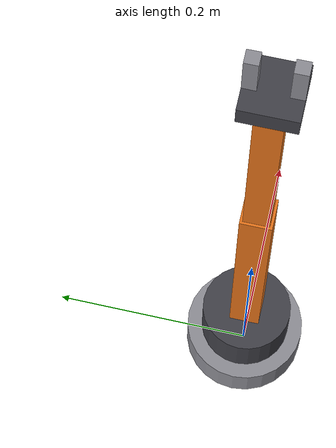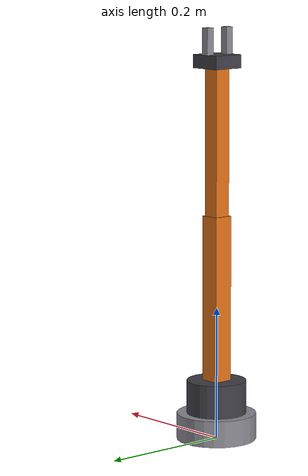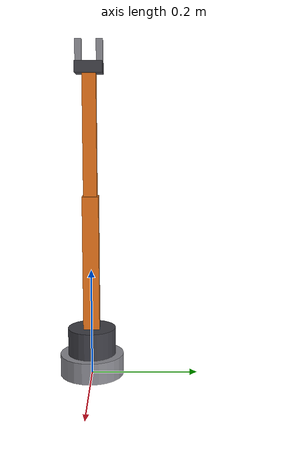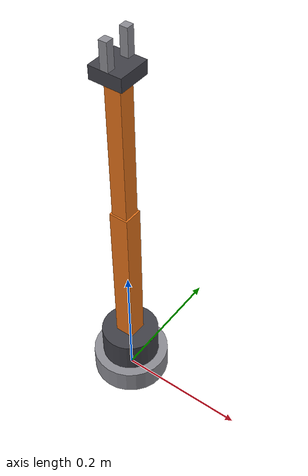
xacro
<?xml version="1.0"?>
<!-- 用途：Gazebo 仿真（含 ros2_control 硬件接口与插件） -->
<robot xmlns:xacro="http://www.ros.org/wiki/xacro" name="ros2_arm">

  <!-- 1. 引入零件库 -->
  <xacro:include filename="$(find ros2_arm_description)/urdf/ros2_arm_core.xacro"/>
  <!-- 2. 引入 ros2_control 接口声明（第 06 章写的文件） -->
  <xacro:include filename="$(find ros2_arm_description)/urdf/ros2_arm.ros2_control.xacro"/>

  <!-- 3. 声明硬件接口：仿真时插 ign_ros2_control 插件 -->
  <xacro:ros2_arm_ros2_control name="Ros2ArmSystem" plugin_name="ign_ros2_control/IgnitionSystem"/>

  <!-- 4. 让 Gazebo 加载 ros2_control 插件（controller_manager 由此诞生） -->
  <gazebo>
    <plugin filename="ign_ros2_control-system" name="ign_ros2_control::IgnitionROS2ControlPlugin">
      <parameters>$(find ros2_arm_bringup)/config/ros2_arm_controllers.yaml</parameters>
    </plugin>
  </gazebo>

</robot>

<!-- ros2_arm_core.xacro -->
<robot xmlns:xacro="http://www.ros.org/wiki/xacro" name="ros2_arm">

  <!-- ================= 0. 惯量计算宏（所有连杆复用） ================= -->

  <!-- 长方体惯量：x y z 为三边长度，m 为质量 -->
  <xacro:macro name="box_inertia" params="m x y z">
    <inertial>
      <mass value="${m}"/>
      <origin xyz="0 0 0" rpy="0 0 0"/>
      <inertia ixx="${m*(y*y+z*z)/12}" ixy="0" ixz="0"
               iyy="${m*(x*x+z*z)/12}" iyz="0"
               izz="${m*(x*x+y*y)/12}"/>
    </inertial>
  </xacro:macro>

  <!-- 圆柱惯量：r 半径，h 高（轴向为 z），m 质量 -->
  <xacro:macro name="cylinder_inertia" params="m r h">
    <inertial>
      <mass value="${m}"/>
      <origin xyz="0 0 0" rpy="0 0 0"/>
      <inertia ixx="${m*(3*r*r+h*h)/12}" ixy="0" ixz="0"
               iyy="${m*(3*r*r+h*h)/12}" iyz="0"
               izz="${m*r*r/2}"/>
    </inertial>
  </xacro:macro>

  <!-- ================= 1. 颜色 ================= -->

  <xacro:property name="col_base"  value="0.55 0.55 0.58 1.0"/>
  <xacro:property name="col_arm"   value="0.90 0.45 0.10 1.0"/>
  <xacro:property name="col_joint" value="0.25 0.25 0.28 1.0"/>

  <!-- ================= 2. 尺寸与质量（要调参数只改这里） ================= -->

  <xacro:property name="base_radius"   value="0.06"/>
  <xacro:property name="base_height"   value="0.04"/>
  <xacro:property name="base_mass"     value="1.0"/>

  <xacro:property name="link1_radius"  value="0.045"/>
  <xacro:property name="link1_height"  value="0.05"/>
  <xacro:property name="link1_mass"    value="0.5"/>

  <xacro:property name="link2_width"   value="0.03"/>
  <xacro:property name="link2_length"  value="0.25"/>
  <xacro:property name="link2_mass"    value="0.4"/>

  <xacro:property name="link3_width"   value="0.025"/>
  <xacro:property name="link3_length"  value="0.22"/>
  <xacro:property name="link3_mass"    value="0.3"/>

  <xacro:property name="grip_x"        value="0.05"/>
  <xacro:property name="grip_y"        value="0.05"/>
  <xacro:property name="grip_z"        value="0.02"/>
  <xacro:property name="grip_mass"     value="0.15"/>
  <xacro:property name="finger_size"   value="0.012"/>
  <xacro:property name="finger_len"    value="0.04"/>
  <xacro:property name="finger_mass"   value="0.02"/>

 <!-- ================= 3. 世界链接 + 底座（把机械臂钉在地面上） ================= -->

  <link name="world"/>

  <joint name="world_base_joint" type="fixed">
    <parent link="world"/>
    <child  link="base_link"/>
  </joint>

  <link name="base_link">
    <xacro:cylinder_inertia m="${base_mass}" r="${base_radius}" h="${base_height}"/>
    <visual>
      <origin xyz="0 0 ${base_height/2}" rpy="0 0 0"/>
      <geometry>
        <cylinder radius="${base_radius}" length="${base_height}"/>
      </geometry>
      <material name="col_base"><color rgba="${col_base}"/></material>
    </visual>
    <collision>
      <origin xyz="0 0 ${base_height/2}" rpy="0 0 0"/>
      <geometry>
        <cylinder radius="${base_radius}" length="${base_height}"/>
      </geometry>
    </collision>
  </link>

  <!-- ================= 4. 关节 1：底座旋转（绕 Z 轴） ================= -->

  <joint name="base_joint" type="revolute">
    <parent link="base_link"/>
    <child  link="link1"/>
    <origin xyz="0 0 ${base_height}" rpy="0 0 0"/>
    <axis xyz="0 0 1"/>
    <limit lower="-3.14159" upper="3.14159" effort="10.0" velocity="1.5"/>
  </joint>

  <link name="link1">
    <xacro:cylinder_inertia m="${link1_mass}" r="${link1_radius}" h="${link1_height}"/>
    <visual>
      <origin xyz="0 0 ${link1_height/2}" rpy="0 0 0"/>
      <geometry>
        <cylinder radius="${link1_radius}" length="${link1_height}"/>
      </geometry>
      <material name="col_joint"><color rgba="${col_joint}"/></material>
    </visual>
    <collision>
      <origin xyz="0 0 ${link1_height/2}" rpy="0 0 0"/>
      <geometry>
        <cylinder radius="${link1_radius}" length="${link1_height}"/>
      </geometry>
    </collision>
  </link>

  <!-- ================= 5. 关节 2：肩关节（绕 Y 轴） ================= -->

  <joint name="shoulder_joint" type="revolute">
    <parent link="link1"/>
    <child  link="link2"/>
    <origin xyz="0 0 ${link1_height}" rpy="0 0 0"/>
    <axis xyz="0 1 0"/>
    <limit lower="-1.5708" upper="1.5708" effort="10.0" velocity="1.5"/>
  </joint>

  <link name="link2">
    <xacro:box_inertia m="${link2_mass}" x="${link2_width}" y="${link2_width}" z="${link2_length}"/>
    <visual>
      <origin xyz="0 0 ${link2_length/2}" rpy="0 0 0"/>
      <geometry>
        <box size="${link2_width} ${link2_width} ${link2_length}"/>
      </geometry>
      <material name="col_arm"><color rgba="${col_arm}"/></material>
    </visual>
    <collision>
      <origin xyz="0 0 ${link2_length/2}" rpy="0 0 0"/>
      <geometry>
        <box size="${link2_width} ${link2_width} ${link2_length}"/>
      </geometry>
    </collision>
  </link>

  <!-- ================= 6. 关节 3：肘关节（绕 Y 轴） ================= -->

  <joint name="elbow_joint" type="revolute">
    <parent link="link2"/>
    <child  link="link3"/>
    <origin xyz="0 0 ${link2_length}" rpy="0 0 0"/>
    <axis xyz="0 1 0"/>
    <limit lower="-2.0" upper="2.0" effort="10.0" velocity="1.5"/>
  </joint>

  <link name="link3">
    <xacro:box_inertia m="${link3_mass}" x="${link3_width}" y="${link3_width}" z="${link3_length}"/>
    <visual>
      <origin xyz="0 0 ${link3_length/2}" rpy="0 0 0"/>
      <geometry>
        <box size="${link3_width} ${link3_width} ${link3_length}"/>
      </geometry>
      <material name="col_arm"><color rgba="${col_arm}"/></material>
    </visual>
    <collision>
      <origin xyz="0 0 ${link3_length/2}" rpy="0 0 0"/>
      <geometry>
        <box size="${link3_width} ${link3_width} ${link3_length}"/>
      </geometry>
    </collision>
  </link>

 <joint name="gripper_joint" type="fixed">
    <parent link="link3"/>
    <child  link="gripper_base"/>
    <origin xyz="0 0 ${link3_length}" rpy="0 0 0"/>
  </joint>

  <link name="gripper_base">
    <xacro:box_inertia m="${grip_mass}" x="${grip_x}" y="${grip_y}" z="${grip_z}"/>
    <visual>
      <origin xyz="0 0 ${grip_z/2}" rpy="0 0 0"/>
      <geometry>
        <box size="${grip_x} ${grip_y} ${grip_z}"/>
      </geometry>
      <material name="col_joint"><color rgba="${col_joint}"/></material>
    </visual>
    <collision>
      <origin xyz="0 0 ${grip_z/2}" rpy="0 0 0"/>
      <geometry>
        <box size="${grip_x} ${grip_y} ${grip_z}"/>
      </geometry>
    </collision>
  </link>

  <!-- 右指（主动）：绕 X 轴旋转，指在 YZ 平面内摆动。
       角度为负时指尖向 +Y 偏 → 向对侧靠拢 = "闭合"；0.0 即"张开到竖直"。
       关键：关节轴放在指的根部、指沿 +Z 伸出，
       所以 0 位时重力矩为 0，不会像平移关节那样被沿运动方向的重力分量顶住。 -->
  <joint name="finger_right_joint" type="revolute">
    <parent link="gripper_base"/>
    <child  link="finger_right"/>
    <origin xyz="0 ${-grip_y/2 + finger_size/2} ${grip_z}" rpy="0 0 0"/>
    <axis xyz="1 0 0"/>
    <limit lower="-0.4" upper="0.0" effort="1000.0" velocity="1.0"/>
  </joint>

  <link name="finger_right">
    <xacro:box_inertia m="${finger_mass}" x="${finger_size}" y="${finger_size}" z="${finger_len}"/>
    <visual>
      <origin xyz="0 0 ${finger_len/2}" rpy="0 0 0"/>
      <geometry>
        <box size="${finger_size} ${finger_size} ${finger_len}"/>
      </geometry>
      <material name="col_base"><color rgba="${col_base}"/></material>
    </visual>
    <collision>
      <origin xyz="0 0 ${finger_len/2}" rpy="0 0 0"/>
      <geometry>
        <box size="${finger_size} ${finger_size} ${finger_len}"/>
      </geometry>
    </collision>
  </link>

  <!-- 左指（从动）：mimic 右指、乘 -1，两指对称开合。
       它不需要控制器去驱动 —— 硬件层会自动让它跟随右指。 -->
  <joint name="finger_left_joint" type="revolute">
    <parent link="gripper_base"/>
    <child  link="finger_left"/>
    <origin xyz="0 ${grip_y/2 - finger_size/2} ${grip_z}" rpy="0 0 0"/>
    <axis xyz="1 0 0"/>
    <limit lower="0.0" upper="0.4" effort="1000.0" velocity="1.0"/>
    <mimic joint="finger_right_joint" multiplier="-1" offset="0"/>
  </joint>

  <link name="finger_left">
    <xacro:box_inertia m="${finger_mass}" x="${finger_size}" y="${finger_size}" z="${finger_len}"/>
    <visual>
      <origin xyz="0 0 ${finger_len/2}" rpy="0 0 0"/>
      <geometry>
        <box size="${finger_size} ${finger_size} ${finger_len}"/>
      </geometry>
      <material name="col_base"><color rgba="${col_base}"/></material>
    </visual>
    <collision>
      <origin xyz="0 0 ${finger_len/2}" rpy="0 0 0"/>
      <geometry>
        <box size="${finger_size} ${finger_size} ${finger_len}"/>
      </geometry>
    </collision>
  </link>

</robot>
